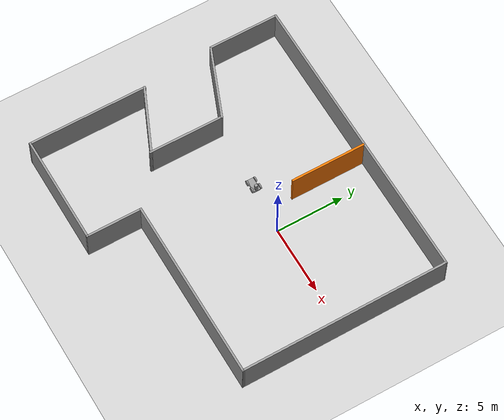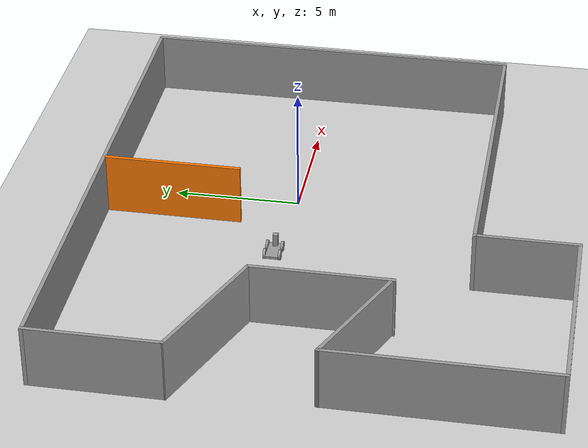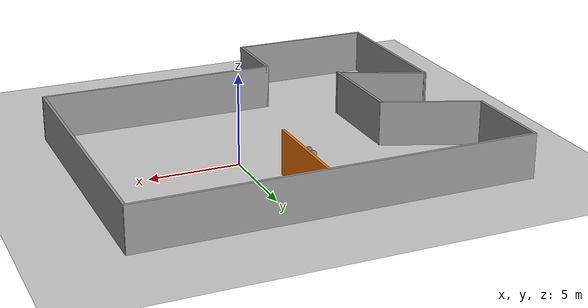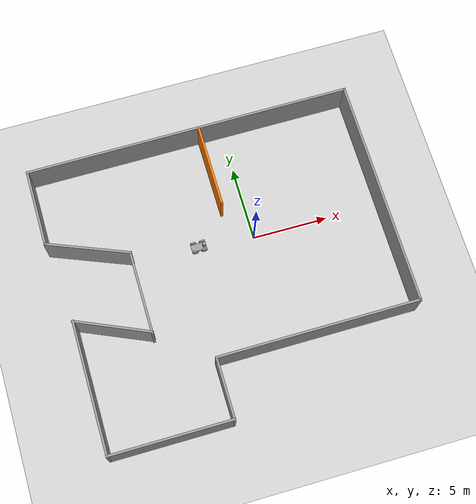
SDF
<sdf version="1.6">
 <world name="default">
  <plugin name="hello" filename="libhello.so"/>
  <light name="sun" type="directional">
   <pose>0 0 10 0 -0 0</pose>
   <diffuse>0.8 0.8 0.8 1</diffuse>
   <specular>0.2 0.2 0.2 1</specular>
   <attenuation>
    <range>1000</range>
    <constant>0.9</constant>
    <linear>0.01</linear>
    <quadratic>0.001</quadratic>
   </attenuation>
   <direction>-0.5 0.1 -0.9</direction>
  </light>
  <model name="ground_plane">
   <static>1</static>
   <link name="link">
    <collision name="collision">
     <geometry><plane><normal>0 0 1</normal><size>100 100</size></plane></geometry>
     <surface>
      <contact><collide_bitmask>65535</collide_bitmask></contact>
      <friction><ode><mu>100</mu><mu2>50</mu2></ode></friction>
     </surface>
    </collision>
    <visual name="visual">
     <cast_shadows>0</cast_shadows>
     <geometry><plane><normal>0 0 1</normal><size>100 100</size></plane></geometry>
     <material>
      <script><uri>file://media/materials/scripts/gazebo.material</uri><name>Gazebo/Grey</name></script>
     </material>
    </visual>
   </link>
  </model>
  <gravity>0 0 -9.8</gravity>
  <magnetic_field>6e-06 2.3e-05 -4.2e-05</magnetic_field>
  <atmosphere type="adiabatic"/>
  <physics name="default_physics" default="0" type="ode">
   <max_step_size>0.001</max_step_size>
   <real_time_factor>1</real_time_factor>
   <real_time_update_rate>1000</real_time_update_rate>
  </physics>
  <scene><ambient>0.4 0.4 0.4 1</ambient><background>0.7 0.7 0.7 1</background><shadows>1</shadows></scene>
  <spherical_coordinates>
   <surface_model>EARTH_WGS84</surface_model>
   <latitude_deg>0</latitude_deg>
   <longitude_deg>0</longitude_deg>
   <elevation>0</elevation>
   <heading_deg>0</heading_deg>
  </spherical_coordinates>
  <model name="robot2">
   <plugin name="modelpush" filename="libmodelpush.so"/>
   <link name="link_0">
    <pose>-0.505429 -0.212278 0.058001 0 -0 0</pose>
    <inertial>
     <mass>1</mass>
     <inertia>
      <ixx>0.166667</ixx>
      <ixy>0</ixy>
      <ixz>0</ixz>
      <iyy>0.166667</iyy>
      <iyz>0</iyz>
      <izz>0.166667</izz>
     </inertia>
    </inertial>
    <visual name="visual">
     <geometry><box><size>1 0.5 0.1</size></box></geometry>
     <material>
      <lighting>1</lighting>
      <script><uri>file://media/materials/scripts/gazebo.material</uri><name>Gazebo/Grey</name></script>
      <shader type="pixel"><normal_map>__default__</normal_map></shader>
      <ambient>0.3 0.3 0.3 1</ambient>
      <diffuse>0.7 0.7 0.7 1</diffuse>
      <specular>0.01 0.01 0.01 1</specular>
      <emissive>0 0 0 1</emissive>
     </material>
    </visual>
    <collision name="collision">
     <geometry><box><size>1 0.5 0.1</size></box></geometry>
     <surface>
      <friction>
       <ode><mu>1</mu><mu2>1</mu2><fdir1>0 0 0</fdir1><slip1>0</slip1><slip2>0</slip2></ode>
       <torsional>
        <coefficient>1</coefficient>
        <patch_radius>0</patch_radius>
        <surface_radius>0</surface_radius>
        <use_patch_radius>1</use_patch_radius>
        <ode><slip>0</slip></ode>
       </torsional>
      </friction>
      <bounce><restitution_coefficient>0</restitution_coefficient><threshold>1e+06</threshold></bounce>
      <contact>
       <collide_without_contact>0</collide_without_contact>
       <collide_without_contact_bitmask>1</collide_without_contact_bitmask>
       <collide_bitmask>1</collide_bitmask>
       <ode>
        <soft_cfm>0</soft_cfm>
        <soft_erp>0.2</soft_erp>
        <kp>1e+13</kp>
        <kd>1</kd>
        <max_vel>0.01</max_vel>
        <min_depth>0</min_depth>
       </ode>
       <bullet>
        <split_impulse>1</split_impulse>
        <split_impulse_penetration_threshold>-0.01</split_impulse_penetration_threshold>
        <soft_cfm>0</soft_cfm>
        <soft_erp>0.2</soft_erp>
        <kp>1e+13</kp>
        <kd>1</kd>
       </bullet>
      </contact>
     </surface>
    </collision>
   </link>
   <link name="link_1">
    <pose>-0.805429 -0.512297 0.102996 1.5707 -0 0</pose>
    <inertial>
     <mass>1</mass>
     <inertia><ixx>0.145833</ixx><ixy>0</ixy><ixz>0</ixz><iyy>0.145833</iyy><iyz>0</iyz><izz>0.125</izz></inertia>
    </inertial>
    <visual name="visual">
     <geometry><cylinder><radius>0.2</radius><length>0.1</length></cylinder></geometry>
     <material>
      <lighting>1</lighting>
      <script><uri>file://media/materials/scripts/gazebo.material</uri><name>Gazebo/Grey</name></script>
      <shader type="pixel"><normal_map>__default__</normal_map></shader>
      <ambient>0.3 0.3 0.3 1</ambient>
      <diffuse>0.7 0.7 0.7 1</diffuse>
      <specular>0.01 0.01 0.01 1</specular>
      <emissive>0 0 0 1</emissive>
     </material>
    </visual>
    <collision name="collision">
     <geometry><cylinder><radius>0.2</radius><length>0.1</length></cylinder></geometry>
     <surface>
      <friction>
       <ode><mu>1</mu><mu2>1</mu2><fdir1>0 0 0</fdir1><slip1>0</slip1><slip2>0</slip2></ode>
       <torsional>
        <coefficient>1</coefficient>
        <patch_radius>0</patch_radius>
        <surface_radius>0</surface_radius>
        <use_patch_radius>1</use_patch_radius>
        <ode><slip>0</slip></ode>
       </torsional>
      </friction>
      <bounce><restitution_coefficient>0</restitution_coefficient><threshold>1e+06</threshold></bounce>
      <contact>
       <collide_without_contact>0</collide_without_contact>
       <collide_without_contact_bitmask>1</collide_without_contact_bitmask>
       <collide_bitmask>1</collide_bitmask>
       <ode>
        <soft_cfm>0</soft_cfm>
        <soft_erp>0.2</soft_erp>
        <kp>1e+13</kp>
        <kd>1</kd>
        <max_vel>0.01</max_vel>
        <min_depth>0</min_depth>
       </ode>
       <bullet>
        <split_impulse>1</split_impulse>
        <split_impulse_penetration_threshold>-0.01</split_impulse_penetration_threshold>
        <soft_cfm>0</soft_cfm>
        <soft_erp>0.2</soft_erp>
        <kp>1e+13</kp>
        <kd>1</kd>
       </bullet>
      </contact>
     </surface>
    </collision>
   </link>
   <link name="link_1_clone">
    <pose>-0.805429 0.087742 0.103001 1.5707 -0 0</pose>
    <inertial>
     <mass>1</mass>
     <inertia><ixx>0.145833</ixx><ixy>0</ixy><ixz>0</ixz><iyy>0.145833</iyy><iyz>0</iyz><izz>0.125</izz></inertia>
    </inertial>
    <visual name="visual">
     <geometry><cylinder><radius>0.2</radius><length>0.1</length></cylinder></geometry>
     <material>
      <lighting>1</lighting>
      <script><uri>file://media/materials/scripts/gazebo.material</uri><name>Gazebo/Grey</name></script>
      <shader type="pixel"><normal_map>__default__</normal_map></shader>
      <ambient>0.3 0.3 0.3 1</ambient>
      <diffuse>0.7 0.7 0.7 1</diffuse>
      <specular>0.01 0.01 0.01 1</specular>
      <emissive>0 0 0 1</emissive>
     </material>
    </visual>
    <collision name="collision">
     <geometry><cylinder><radius>0.2</radius><length>0.1</length></cylinder></geometry>
     <surface>
      <friction>
       <ode><mu>1</mu><mu2>1</mu2><fdir1>0 0 0</fdir1><slip1>0</slip1><slip2>0</slip2></ode>
       <torsional>
        <coefficient>1</coefficient>
        <patch_radius>0</patch_radius>
        <surface_radius>0</surface_radius>
        <use_patch_radius>1</use_patch_radius>
        <ode><slip>0</slip></ode>
       </torsional>
      </friction>
      <bounce><restitution_coefficient>0</restitution_coefficient><threshold>1e+06</threshold></bounce>
      <contact>
       <collide_without_contact>0</collide_without_contact>
       <collide_without_contact_bitmask>1</collide_without_contact_bitmask>
       <collide_bitmask>1</collide_bitmask>
       <ode>
        <soft_cfm>0</soft_cfm>
        <soft_erp>0.2</soft_erp>
        <kp>1e+13</kp>
        <kd>1</kd>
        <max_vel>0.01</max_vel>
        <min_depth>0</min_depth>
       </ode>
       <bullet>
        <split_impulse>1</split_impulse>
        <split_impulse_penetration_threshold>-0.01</split_impulse_penetration_threshold>
        <soft_cfm>0</soft_cfm>
        <soft_erp>0.2</soft_erp>
        <kp>1e+13</kp>
        <kd>1</kd>
       </bullet>
      </contact>
     </surface>
    </collision>
   </link>
   <link name="link_1_clone_0">
    <pose>-0.205429 -0.512297 0.103001 1.5707 -0 0</pose>
    <inertial>
     <mass>1</mass>
     <inertia><ixx>0.145833</ixx><ixy>0</ixy><ixz>0</ixz><iyy>0.145833</iyy><iyz>0</iyz><izz>0.125</izz></inertia>
    </inertial>
    <visual name="visual">
     <geometry><cylinder><radius>0.2</radius><length>0.1</length></cylinder></geometry>
     <material>
      <lighting>1</lighting>
      <script><uri>file://media/materials/scripts/gazebo.material</uri><name>Gazebo/Grey</name></script>
      <shader type="pixel"><normal_map>__default__</normal_map></shader>
      <ambient>0.3 0.3 0.3 1</ambient>
      <diffuse>0.7 0.7 0.7 1</diffuse>
      <specular>0.01 0.01 0.01 1</specular>
      <emissive>0 0 0 1</emissive>
     </material>
    </visual>
    <collision name="collision">
     <geometry><cylinder><radius>0.2</radius><length>0.1</length></cylinder></geometry>
     <surface>
      <friction>
       <ode><mu>1</mu><mu2>1</mu2><fdir1>0 0 0</fdir1><slip1>0</slip1><slip2>0</slip2></ode>
       <torsional>
        <coefficient>1</coefficient>
        <patch_radius>0</patch_radius>
        <surface_radius>0</surface_radius>
        <use_patch_radius>1</use_patch_radius>
        <ode><slip>0</slip></ode>
       </torsional>
      </friction>
      <bounce><restitution_coefficient>0</restitution_coefficient><threshold>1e+06</threshold></bounce>
      <contact>
       <collide_without_contact>0</collide_without_contact>
       <collide_without_contact_bitmask>1</collide_without_contact_bitmask>
       <collide_bitmask>1</collide_bitmask>
       <ode>
        <soft_cfm>0</soft_cfm>
        <soft_erp>0.2</soft_erp>
        <kp>1e+13</kp>
        <kd>1</kd>
        <max_vel>0.01</max_vel>
        <min_depth>0</min_depth>
       </ode>
       <bullet>
        <split_impulse>1</split_impulse>
        <split_impulse_penetration_threshold>-0.01</split_impulse_penetration_threshold>
        <soft_cfm>0</soft_cfm>
        <soft_erp>0.2</soft_erp>
        <kp>1e+13</kp>
        <kd>1</kd>
       </bullet>
      </contact>
     </surface>
    </collision>
   </link>
   <link name="link_1_clone_1">
    <pose>-0.205429 0.087742 0.103001 1.5707 -0 0</pose>
    <inertial>
     <mass>1</mass>
     <inertia><ixx>0.145833</ixx><ixy>0</ixy><ixz>0</ixz><iyy>0.145833</iyy><iyz>0</iyz><izz>0.125</izz></inertia>
    </inertial>
    <visual name="visual">
     <geometry><cylinder><radius>0.2</radius><length>0.1</length></cylinder></geometry>
     <material>
      <lighting>1</lighting>
      <script><uri>file://media/materials/scripts/gazebo.material</uri><name>Gazebo/Grey</name></script>
      <shader type="pixel"><normal_map>__default__</normal_map></shader>
      <ambient>0.3 0.3 0.3 1</ambient>
      <diffuse>0.7 0.7 0.7 1</diffuse>
      <specular>0.01 0.01 0.01 1</specular>
      <emissive>0 0 0 1</emissive>
     </material>
    </visual>
    <collision name="collision">
     <geometry><cylinder><radius>0.2</radius><length>0.1</length></cylinder></geometry>
     <surface>
      <friction>
       <ode><mu>1</mu><mu2>1</mu2><fdir1>0 0 0</fdir1><slip1>0</slip1><slip2>0</slip2></ode>
       <torsional>
        <coefficient>1</coefficient>
        <patch_radius>0</patch_radius>
        <surface_radius>0</surface_radius>
        <use_patch_radius>1</use_patch_radius>
        <ode><slip>0</slip></ode>
       </torsional>
      </friction>
      <bounce><restitution_coefficient>0</restitution_coefficient><threshold>1e+06</threshold></bounce>
      <contact>
       <collide_without_contact>0</collide_without_contact>
       <collide_without_contact_bitmask>1</collide_without_contact_bitmask>
       <collide_bitmask>1</collide_bitmask>
       <ode>
        <soft_cfm>0</soft_cfm>
        <soft_erp>0.2</soft_erp>
        <kp>1e+13</kp>
        <kd>1</kd>
        <max_vel>0.01</max_vel>
        <min_depth>0</min_depth>
       </ode>
       <bullet>
        <split_impulse>1</split_impulse>
        <split_impulse_penetration_threshold>-0.01</split_impulse_penetration_threshold>
        <soft_cfm>0</soft_cfm>
        <soft_erp>0.2</soft_erp>
        <kp>1e+13</kp>
        <kd>1</kd>
       </bullet>
      </contact>
     </surface>
    </collision>
   </link>
   <link name="link_2">
    <pose>-0.145429 -0.232278 0.358001 0 -0 0</pose>
    <inertial>
     <mass>1</mass>
     <inertia>
      <ixx>0.166667</ixx>
      <ixy>0</ixy>
      <ixz>0</ixz>
      <iyy>0.166667</iyy>
      <iyz>0</iyz>
      <izz>0.166667</izz>
     </inertia>
    </inertial>
    <visual name="visual">
     <geometry><box><size>0.2 0.2 0.5</size></box></geometry>
     <material>
      <lighting>1</lighting>
      <script><uri>file://media/materials/scripts/gazebo.material</uri><name>Gazebo/Grey</name></script>
      <shader type="pixel"><normal_map>__default__</normal_map></shader>
      <ambient>0.3 0.3 0.3 1</ambient>
      <diffuse>0.7 0.7 0.7 1</diffuse>
      <specular>0.01 0.01 0.01 1</specular>
      <emissive>0 0 0 1</emissive>
     </material>
    </visual>
    <collision name="collision">
     <geometry><box><size>0.2 0.2 0.5</size></box></geometry>
     <surface>
      <friction>
       <ode><mu>1</mu><mu2>1</mu2><fdir1>0 0 0</fdir1><slip1>0</slip1><slip2>0</slip2></ode>
       <torsional>
        <coefficient>1</coefficient>
        <patch_radius>0</patch_radius>
        <surface_radius>0</surface_radius>
        <use_patch_radius>1</use_patch_radius>
        <ode><slip>0</slip></ode>
       </torsional>
      </friction>
      <bounce><restitution_coefficient>0</restitution_coefficient><threshold>1e+06</threshold></bounce>
      <contact>
       <collide_without_contact>0</collide_without_contact>
       <collide_without_contact_bitmask>1</collide_without_contact_bitmask>
       <collide_bitmask>1</collide_bitmask>
       <ode>
        <soft_cfm>0</soft_cfm>
        <soft_erp>0.2</soft_erp>
        <kp>1e+13</kp>
        <kd>1</kd>
        <max_vel>0.01</max_vel>
        <min_depth>0</min_depth>
       </ode>
       <bullet>
        <split_impulse>1</split_impulse>
        <split_impulse_penetration_threshold>-0.01</split_impulse_penetration_threshold>
        <soft_cfm>0</soft_cfm>
        <soft_erp>0.2</soft_erp>
        <kp>1e+13</kp>
        <kd>1</kd>
       </bullet>
      </contact>
     </surface>
    </collision>
   </link>
   <joint name="link_0_JOINT_1" type="revolute">
    <parent>link_0</parent>
    <child>link_1</child>
    <axis>
     <xyz>1 0 0</xyz>
     <use_parent_model_frame>0</use_parent_model_frame>
     <limit>
      <lower>-1.79769e+308</lower>
      <upper>1.79769e+308</upper>
      <effort>-1</effort>
      <velocity>-1</velocity>
     </limit>
     <dynamics>
      <spring_reference>0</spring_reference>
      <spring_stiffness>0</spring_stiffness>
      <damping>0</damping>
     </dynamics>
    </axis>
    <physics>
     <ode><limit><cfm>0</cfm><erp>0.2</erp></limit><suspension><cfm>0</cfm><erp>0.2</erp></suspension></ode>
    </physics>
   </joint>
   <joint name="link_0_JOINT_3" type="revolute">
    <parent>link_0</parent>
    <child>link_1_clone_0</child>
    <pose>0 0 0 -0.01 0 0</pose>
    <axis>
     <xyz>1 0 0</xyz>
     <use_parent_model_frame>0</use_parent_model_frame>
     <limit>
      <lower>-1.79769e+308</lower>
      <upper>1.79769e+308</upper>
      <effort>-1</effort>
      <velocity>-1</velocity>
     </limit>
     <dynamics>
      <spring_reference>0</spring_reference>
      <spring_stiffness>0</spring_stiffness>
      <damping>0</damping>
     </dynamics>
    </axis>
    <physics>
     <ode><limit><cfm>0</cfm><erp>0.2</erp></limit><suspension><cfm>0</cfm><erp>0.2</erp></suspension></ode>
    </physics>
   </joint>
   <joint name="link_0_JOINT_4" type="revolute">
    <parent>link_0</parent>
    <child>link_1_clone_1</child>
    <axis>
     <xyz>1 0 0</xyz>
     <use_parent_model_frame>0</use_parent_model_frame>
     <limit>
      <lower>-1.79769e+308</lower>
      <upper>1.79769e+308</upper>
      <effort>-1</effort>
      <velocity>-1</velocity>
     </limit>
     <dynamics>
      <spring_reference>0</spring_reference>
      <spring_stiffness>0</spring_stiffness>
      <damping>0</damping>
     </dynamics>
    </axis>
    <physics>
     <ode><limit><cfm>0</cfm><erp>0.2</erp></limit><suspension><cfm>0</cfm><erp>0.2</erp></suspension></ode>
    </physics>
   </joint>
   <joint name="link_0_JOINT_6" type="revolute">
    <parent>link_0</parent>
    <child>link_2</child>
    <axis>
     <xyz>1 0 0</xyz>
     <use_parent_model_frame>0</use_parent_model_frame>
     <limit>
      <lower>-1.79769e+308</lower>
      <upper>1.79769e+308</upper>
      <effort>-1</effort>
      <velocity>-1</velocity>
     </limit>
     <dynamics>
      <spring_reference>0</spring_reference>
      <spring_stiffness>0</spring_stiffness>
      <damping>0</damping>
     </dynamics>
    </axis>
    <physics>
     <ode><limit><cfm>0</cfm><erp>0.2</erp></limit><suspension><cfm>0</cfm><erp>0.2</erp></suspension></ode>
    </physics>
   </joint>
   <joint name="link_1_JOINT_2" type="revolute">
    <parent>link_0</parent>
    <child>link_1_clone</child>
    <axis>
     <xyz>1 0 0</xyz>
     <use_parent_model_frame>0</use_parent_model_frame>
     <limit>
      <lower>-1.79769e+308</lower>
      <upper>1.79769e+308</upper>
      <effort>-1</effort>
      <velocity>-1</velocity>
     </limit>
     <dynamics>
      <spring_reference>0</spring_reference>
      <spring_stiffness>0</spring_stiffness>
      <damping>0</damping>
     </dynamics>
    </axis>
    <physics>
     <ode><limit><cfm>0</cfm><erp>0.2</erp></limit><suspension><cfm>0</cfm><erp>0.2</erp></suspension></ode>
    </physics>
   </joint>
   <static>0</static>
   <pose>-3.17703 0.560104 0.096999 -5e-06 3e-06 0.005234</pose>
  </model>
  <model name="simple-building">
   <pose>-2.33699 -1.95781 0 0 -0 0</pose>
   <link name="Wall_10">
    <collision name="Wall_10_Collision">
     <geometry><box><size>21.75 0.15 2.5</size></box></geometry>
     <pose>0 0 1.25 0 -0 0</pose>
    </collision>
    <visual name="Wall_10_Visual">
     <pose>0 0 1.25 0 -0 0</pose>
     <geometry><box><size>21.75 0.15 2.5</size></box></geometry>
     <material>
      <script><uri>file://media/materials/scripts/gazebo.material</uri><name>Gazebo/Grey</name></script>
      <ambient>1 1 1 1</ambient>
     </material>
     <meta><layer>0</layer></meta>
    </visual>
    <pose>-0.013631 9.52516 0 0 -0 3.14159</pose>
   </link>
   <link name="Wall_11">
    <collision name="Wall_11_Collision">
     <geometry><box><size>5.18882 0.15 2.5</size></box></geometry>
     <pose>0 0 1.25 0 -0 0</pose>
    </collision>
    <visual name="Wall_11_Visual">
     <pose>0 0 1.25 0 -0 0</pose>
     <geometry><box><size>5.18882 0.15 2.5</size></box></geometry>
     <material>
      <script><uri>file://media/materials/scripts/gazebo.material</uri><name>Gazebo/Grey</name></script>
      <ambient>1 1 1 1</ambient>
     </material>
     <meta><layer>0</layer></meta>
    </visual>
    <pose>-10.8136 7.00575 0 0 0 -1.5708</pose>
   </link>
   <link name="Wall_12">
    <collision name="Wall_12_Collision">
     <geometry><box><size>5.58511 0.15 2.5</size></box></geometry>
     <pose>0 0 1.25 0 -0 0</pose>
    </collision>
    <visual name="Wall_12_Visual">
     <pose>0 0 1.25 0 -0 0</pose>
     <geometry><box><size>5.58511 0.15 2.5</size></box></geometry>
     <material>
      <script><uri>file://media/materials/scripts/gazebo.material</uri><name>Gazebo/Grey</name></script>
      <ambient>1 1 1 1</ambient>
     </material>
     <meta><layer>0</layer></meta>
    </visual>
    <pose>-8.29313 3.4398 0 0 0 -0.383156</pose>
   </link>
   <link name="Wall_13">
    <collision name="Wall_13_Collision">
     <geometry><box><size>5.5 0.15 2.5</size></box></geometry>
     <pose>0 0 1.25 0 -0 0</pose>
    </collision>
    <visual name="Wall_13_Visual">
     <pose>0 0 1.25 0 -0 0</pose>
     <geometry><box><size>5.5 0.15 2.5</size></box></geometry>
     <material>
      <script><uri>file://media/materials/scripts/gazebo.material</uri><name>Gazebo/Grey</name></script>
      <ambient>1 1 1 1</ambient>
     </material>
     <meta><layer>0</layer></meta>
    </visual>
    <pose>-5.77262 -0.304665 0 0 0 -1.5708</pose>
   </link>
   <link name="Wall_14">
    <collision name="Wall_14_Collision">
     <geometry><box><size>5.11246 0.15 2.5</size></box></geometry>
     <pose>0 0 1.25 0 -0 0</pose>
    </collision>
    <visual name="Wall_14_Visual">
     <pose>0 0 1.25 0 -0 0</pose>
     <geometry><box><size>5.11246 0.15 2.5</size></box></geometry>
     <material>
      <script><uri>file://media/materials/scripts/gazebo.material</uri><name>Gazebo/Grey</name></script>
      <ambient>1 1 1 1</ambient>
     </material>
     <meta><layer>0</layer></meta>
    </visual>
    <pose>-8.04313 -1.9255 0 0 -0 2.72648</pose>
   </link>
   <link name="Wall_15">
    <collision name="Wall_15_Collision">
     <geometry><box><size>8.75 0.15 2.5</size></box></geometry>
     <pose>0 0 1.25 0 -0 0</pose>
    </collision>
    <visual name="Wall_15_Visual">
     <pose>0 0 1.25 0 -0 0</pose>
     <geometry><box><size>8.75 0.15 2.5</size></box></geometry>
     <material>
      <script><uri>file://media/materials/scripts/gazebo.material</uri><name>Gazebo/Grey</name></script>
      <ambient>1 1 1 1</ambient>
     </material>
     <meta><layer>0</layer></meta>
    </visual>
    <pose>-10.3136 -5.22484 0 0 0 -1.5708</pose>
   </link>
   <link name="Wall_16">
    <collision name="Wall_16_Collision">
     <geometry><box><size>8.06962 0.15 2.5</size></box></geometry>
     <pose>0 0 1.25 0 -0 0</pose>
    </collision>
    <visual name="Wall_16_Visual">
     <pose>0 0 1.25 0 -0 0</pose>
     <geometry><box><size>8.06962 0.15 2.5</size></box></geometry>
     <material>
      <script><uri>file://media/materials/scripts/gazebo.material</uri><name>Gazebo/Grey</name></script>
      <ambient>1 1 1 1</ambient>
     </material>
     <meta><layer>0</layer></meta>
    </visual>
    <pose>-6.35382 -9.52501 0 0 0 -4.4e-05</pose>
   </link>
   <link name="Wall_17">
    <collision name="Wall_17_Collision">
     <geometry><box><size>4.1 0.15 2.5</size></box></geometry>
     <pose>0 0 1.25 0 -0 0</pose>
    </collision>
    <visual name="Wall_17_Visual">
     <pose>0 0 1.25 0 -0 0</pose>
     <geometry><box><size>4.1 0.15 2.5</size></box></geometry>
     <material>
      <script><uri>file://media/materials/scripts/gazebo.material</uri><name>Gazebo/Grey</name></script>
      <ambient>1 1 1 1</ambient>
     </material>
     <meta><layer>0</layer></meta>
    </visual>
    <pose>-2.39401 -7.55019 0 0 -0 1.5708</pose>
   </link>
   <link name="Wall_20">
    <collision name="Wall_20_Collision">
     <geometry><box><size>5.5 0.15 2.5</size></box></geometry>
     <pose>0 0 1.25 0 -0 0</pose>
    </collision>
    <visual name="Wall_20_Visual">
     <pose>0 0 1.25 0 -0 0</pose>
     <geometry><box><size>5.5 0.15 2.5</size></box></geometry>
     <material>
      <script><uri>file://media/materials/scripts/gazebo.material</uri><name>Gazebo/Grey</name></script>
      <ambient>0.996078 0.47451 0.0196078 1</ambient>
     </material>
     <meta><layer>0</layer></meta>
    </visual>
    <pose>0.721986 6.75381 0 0 0 -1.5708</pose>
   </link>
   <link name="Wall_8">
    <collision name="Wall_8_Collision">
     <geometry><box><size>13.3801 0.15 2.5</size></box></geometry>
     <pose>0 0 1.25 0 -0 0</pose>
    </collision>
    <visual name="Wall_8_Visual">
     <pose>0 0 1.25 0 -0 0</pose>
     <geometry><box><size>13.3801 0.15 2.5</size></box></geometry>
     <material>
      <script><uri>file://media/materials/scripts/gazebo.material</uri><name>Gazebo/Grey</name></script>
      <ambient>1 1 1 1</ambient>
     </material>
     <meta><layer>0</layer></meta>
    </visual>
    <pose>4.22099 -5.57519 0 0 -0 0</pose>
   </link>
   <link name="Wall_9">
    <collision name="Wall_9_Collision">
     <geometry><box><size>15.25 0.15 2.5</size></box></geometry>
     <pose>0 0 1.25 0 -0 0</pose>
    </collision>
    <visual name="Wall_9_Visual">
     <pose>0 0 1.25 0 -0 0</pose>
     <geometry><box><size>15.25 0.15 2.5</size></box></geometry>
     <material>
      <script><uri>file://media/materials/scripts/gazebo.material</uri><name>Gazebo/Grey</name></script>
      <ambient>1 1 1 1</ambient>
     </material>
     <meta><layer>0</layer></meta>
    </visual>
    <pose>10.8112 1.97499 0 0 -0 1.57408</pose>
   </link>
   <static>1</static>
  </model>
 </world>
</sdf>
